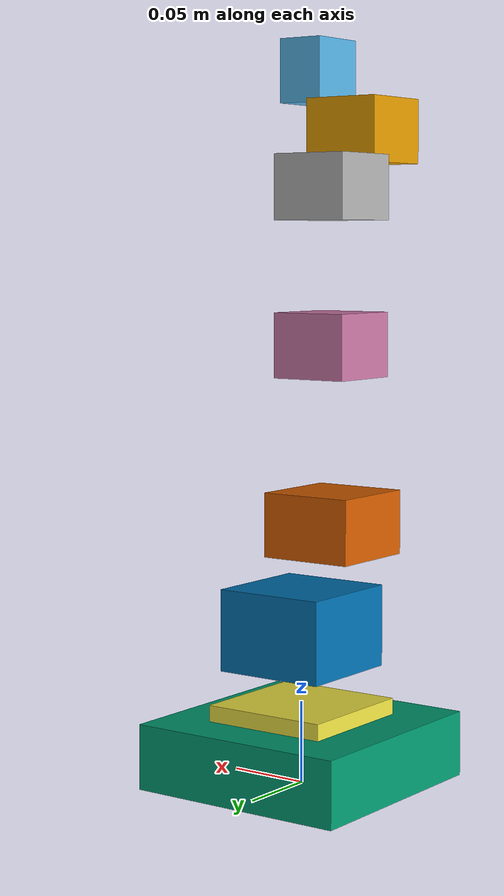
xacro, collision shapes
<?xml version="1.0"?>
<robot xmlns:xacro="http://www.ros.org/wiki/xacro" name="mycobot_280_m5">
  <xacro:property name="mesh_path" value="file://$(find mycobot_description)/urdf/mycobot_280_m5"/>

  <xacro:property name="base_half_height" value="0.0"/>

  <link name="base_footprint">
    <inertial>
      <origin xyz="0 0 0" rpy="0 0 0"/>
      <mass value="0.001"/>
      <inertia ixx="1e-6" iyy="1e-6" izz="1e-6" ixy="0" ixz="0" iyz="0"/>
    </inertial>
  </link>

  <link name="world"/>

  <joint name="virtual_joints" type="fixed">
    <parent link="world"/>
    <child link="base_footprint"/>
    <origin xyz="0 0 0" rpy="0 0 0"/>
  </joint>

  <link name="g_base">
    <inertial>
      <origin xyz="0 0 -0.015" rpy="0 0 0"/>
      <mass value="1.0"/>
      <inertia ixx="0.005" iyy="0.005" izz="0.008" ixy="0" ixz="0" iyz="0"/>
    </inertial>
    <visual>
      <origin xyz="0 0 0" rpy="0 0 1.5708"/>
      <geometry>
        <mesh filename="${mesh_path}/G_base.dae"/>
      </geometry>
    </visual>
    <collision>
      <origin xyz="0 0 0.02" rpy="0 0 1.5708"/>
      <geometry>
        <box size="0.14 0.14 0.04"/>
      </geometry>
    </collision>
  </link>

  <joint name="base_footprint_to_g_base" type="fixed">
    <parent link="base_footprint"/>
    <child link="g_base"/>
    <origin xyz="0 0 ${base_half_height}" rpy="0 0 0"/>
  </joint>

  <xacro:macro name="arm_link" params="name mesh xyz rpy mass box_size">
    <link name="${name}">
      <inertial>
        <origin xyz="0 0 0" rpy="0 0 0"/>
        <mass value="${mass}"/>
        <inertia ixx="0.001" iyy="0.001" izz="0.001" ixy="0" ixz="0" iyz="0"/>
      </inertial>
      <visual>
        <origin xyz="${xyz}" rpy="${rpy}"/>
        <geometry>
          <mesh filename="${mesh_path}/${mesh}"/>
        </geometry>
      </visual>
      <collision>
        <origin xyz="${xyz}" rpy="${rpy}"/>
        <geometry>
          <box size="${box_size}"/>
        </geometry>
      </collision>
    </link>
  </xacro:macro>

  <xacro:arm_link name="joint1" mesh="joint1.dae" xyz="0 0 0" rpy="0 0 -1.5708" mass="0.4" box_size="0.08 0.08 0.05"/>
  <xacro:arm_link name="joint2" mesh="joint2.dae" xyz="0 0 -0.06096" rpy="0 0 -1.5708" mass="0.3" box_size="0.07 0.07 0.05"/>
  <xacro:arm_link name="joint3" mesh="joint3.dae" xyz="0 0 0.03256" rpy="0 -1.5708 0" mass="0.25" box_size="0.06 0.06 0.04"/>
  <xacro:arm_link name="joint4" mesh="joint4.dae" xyz="0 0 0.03056" rpy="0 -1.5708 0" mass="0.2" box_size="0.05 0.05 0.04"/>
  <xacro:arm_link name="joint5" mesh="joint5.dae" xyz="0 0 -0.03356" rpy="-1.5708 0 0" mass="0.18" box_size="0.05 0.05 0.04"/>
  <xacro:arm_link name="joint6" mesh="joint6.dae" xyz="0 0 -0.038" rpy="0 0 0" mass="0.15" box_size="0.05 0.05 0.04"/>
  <xacro:arm_link name="joint6_flange" mesh="joint7.dae" xyz="0 0 -0.012" rpy="0 0 0" mass="0.1" box_size="0.04 0.04 0.03"/>

  <joint name="g_base_to_joint1" type="fixed">
    <parent link="g_base"/>
    <child link="joint1"/>
    <origin xyz="0 0 0.025" rpy="0 0 0"/>
  </joint>

  <joint name="joint2_to_joint1" type="revolute">
    <parent link="joint1"/>
    <child link="joint2"/>
    <origin xyz="0 0 0.13156" rpy="0 0 0"/>
    <axis xyz="0 0 1"/>
    <limit effort="5" velocity="2.0" lower="-2.93" upper="2.93"/>
  </joint>

  <joint name="joint3_to_joint2" type="revolute">
    <parent link="joint2"/>
    <child link="joint3"/>
    <origin xyz="0 0 -0.001" rpy="0 1.5708 -1.5708"/>
    <axis xyz="0 0 1"/>
    <limit effort="5" velocity="2.0" lower="-2.35" upper="2.35"/>
  </joint>

  <joint name="joint4_to_joint3" type="revolute">
    <parent link="joint3"/>
    <child link="joint4"/>
    <origin xyz="-0.1104 0 0" rpy="0 0 0"/>
    <axis xyz="0 0 1"/>
    <limit effort="5" velocity="2.0" lower="-2.53" upper="2.53"/>
  </joint>

  <joint name="joint5_to_joint4" type="revolute">
    <parent link="joint4"/>
    <child link="joint5"/>
    <origin xyz="-0.096 0 0.06462" rpy="0 0 -1.5708"/>
    <axis xyz="0 0 1"/>
    <limit effort="5" velocity="2.0" lower="-2.53" upper="2.53"/>
  </joint>

  <joint name="joint6_to_joint5" type="revolute">
    <parent link="joint5"/>
    <child link="joint6"/>
    <origin xyz="0 -0.07318 0" rpy="1.5708 -1.5708 0"/>
    <axis xyz="0 0 1"/>
    <limit effort="5" velocity="2.0" lower="-2.93" upper="2.93"/>
  </joint>

  <joint name="joint6output_to_joint6" type="revolute">
    <parent link="joint6"/>
    <child link="joint6_flange"/>
    <origin xyz="0 0.0456 0" rpy="-1.5708 0 0"/>
    <axis xyz="0 0 1"/>
    <limit effort="5" velocity="2.0" lower="-3.14" upper="3.14"/>
  </joint>
</robot>
